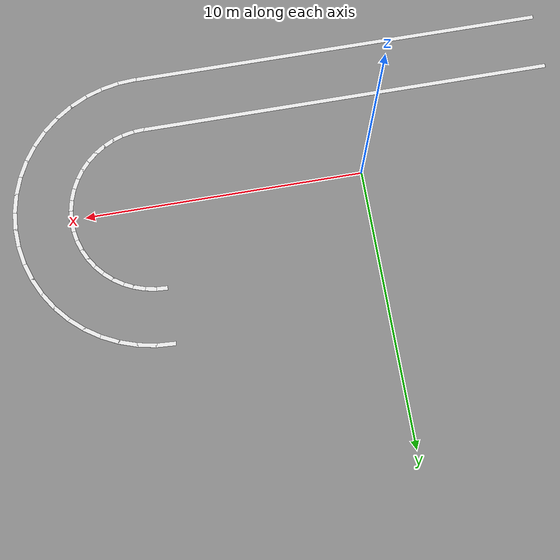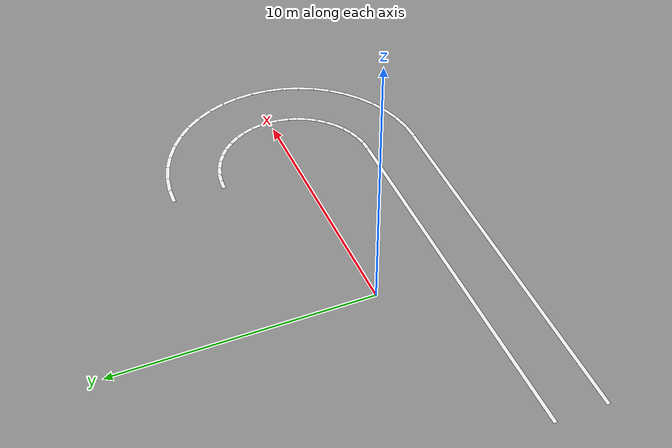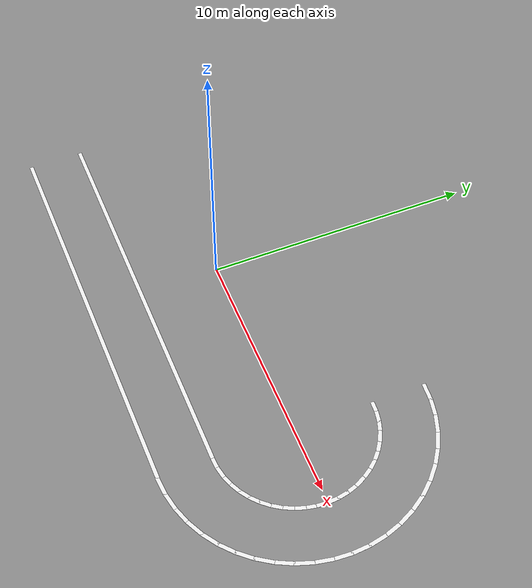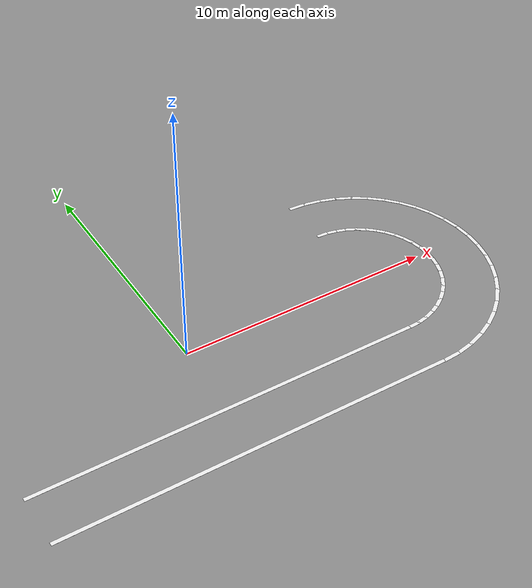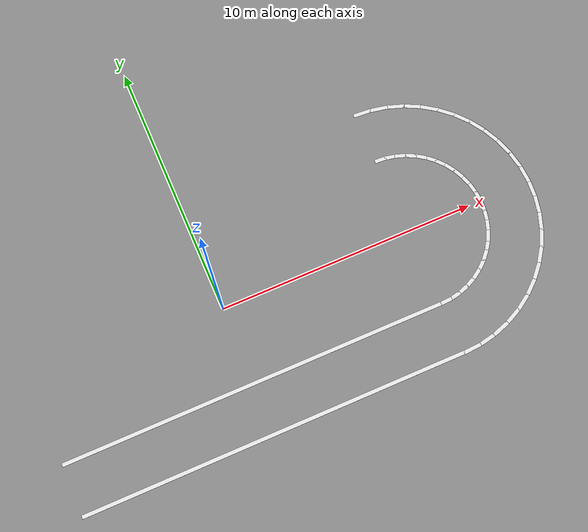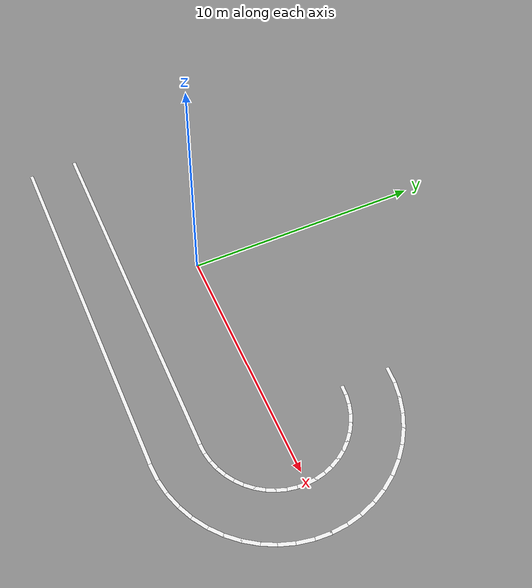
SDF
<sdf version="1.6">
 <world name="stadium_world">
  <model name="straight_bot_inner">
   <static>true</static>
   <pose>0 -3.0 0.001 0 0 0</pose>
   <link name="link">
    <visual name="visual">
     <geometry><box><size>15.0 0.15 0.002</size></box></geometry>
     <material><ambient>1 1 1 1</ambient></material>
    </visual>
   </link>
  </model>
  <model name="straight_bot_outer">
   <static>true</static>
   <pose>0 -5.0 0.001 0 0 0</pose>
   <link name="link">
    <visual name="visual">
     <geometry><box><size>15.0 0.15 0.002</size></box></geometry>
     <material><ambient>1 1 1 1</ambient></material>
    </visual>
   </link>
  </model>
  <model name="arc_right_in_0">
   <static>true</static>
   <pose>7.696209387690429 -2.99357676971581 0.001 0 0 0.06544984694978728</pose>
   <link name="link">
    <visual name="visual">
     <geometry><box><size>0.44326077689142934 0.15 0.002</size></box></geometry>
     <material><ambient>1 1 1 1</ambient></material>
    </visual>
   </link>
  </model>
  <model name="arc_right_out_0">
   <static>true</static>
   <pose>7.827015646150715 -4.989294616193018 0.001 0 0 0.06544984694978728</pose>
   <link name="link">
    <visual name="visual">
     <geometry><box><size>0.7054346281523822 0.15 0.002</size></box></geometry>
     <material><ambient>1 1 1 1</ambient></material>
    </visual>
   </link>
  </model>
  <model name="arc_right_in_1">
   <static>true</static>
   <pose>8.085270966048386 -2.9423558412096913 0.001 0 0 0.19634954084936207</pose>
   <link name="link">
    <visual name="visual">
     <geometry><box><size>0.44326077689142934 0.15 0.002</size></box></geometry>
     <material><ambient>1 1 1 1</ambient></material>
    </visual>
   </link>
  </model>
  <model name="arc_right_out_1">
   <static>true</static>
   <pose>8.475451610080642 -4.903926402016152 0.001 0 0 0.19634954084936207</pose>
   <link name="link">
    <visual name="visual">
     <geometry><box><size>0.7054346281523822 0.15 0.002</size></box></geometry>
     <material><ambient>1 1 1 1</ambient></material>
    </visual>
   </link>
  </model>
  <model name="arc_right_in_2">
   <static>true</static>
   <pose>8.464318395909485 -2.840790388485317 0.001 0 0 0.32724923474893686</pose>
   <link name="link">
    <visual name="visual">
     <geometry><box><size>0.44326077689142934 0.15 0.002</size></box></geometry>
     <material><ambient>1 1 1 1</ambient></material>
    </visual>
   </link>
  </model>
  <model name="arc_right_out_2">
   <static>true</static>
   <pose>9.10719732651581 -4.734650647475528 0.001 0 0 0.32724923474893686</pose>
   <link name="link">
    <visual name="visual">
     <geometry><box><size>0.7054346281523822 0.15 0.002</size></box></geometry>
     <material><ambient>1 1 1 1</ambient></material>
    </visual>
   </link>
  </model>
  <model name="arc_right_in_3">
   <static>true</static>
   <pose>8.826866070657005 -2.690618224598065 0.001 0 0 0.4581489286485114</pose>
   <link name="link">
    <visual name="visual">
     <geometry><box><size>0.44326077689142934 0.15 0.002</size></box></geometry>
     <material><ambient>1 1 1 1</ambient></material>
    </visual>
   </link>
  </model>
  <model name="arc_right_out_3">
   <static>true</static>
   <pose>9.711443451095006 -4.484363707663442 0.001 0 0 0.4581489286485114</pose>
   <link name="link">
    <visual name="visual">
     <geometry><box><size>0.7054346281523822 0.15 0.002</size></box></geometry>
     <material><ambient>1 1 1 1</ambient></material>
    </visual>
   </link>
  </model>
  <model name="arc_right_in_4">
   <static>true</static>
   <pose>9.166710699058807 -2.4944088369076356 0.001 0 0 0.5890486225480862</pose>
   <link name="link">
    <visual name="visual">
     <geometry><box><size>0.44326077689142934 0.15 0.002</size></box></geometry>
     <material><ambient>1 1 1 1</ambient></material>
    </visual>
   </link>
  </model>
  <model name="arc_right_out_4">
   <static>true</static>
   <pose>10.277851165098012 -4.157348061512726 0.001 0 0 0.5890486225480862</pose>
   <link name="link">
    <visual name="visual">
     <geometry><box><size>0.7054346281523822 0.15 0.002</size></box></geometry>
     <material><ambient>1 1 1 1</ambient></material>
    </visual>
   </link>
  </model>
  <model name="arc_right_in_5">
   <static>true</static>
   <pose>9.478037445300206 -2.2555194224369317 0.001 0 0 0.719948316447661</pose>
   <link name="link">
    <visual name="visual">
     <geometry><box><size>0.44326077689142934 0.15 0.002</size></box></geometry>
     <material><ambient>1 1 1 1</ambient></material>
    </visual>
   </link>
  </model>
  <model name="arc_right_out_5">
   <static>true</static>
   <pose>10.796729075500345 -3.7591990373948865 0.001 0 0 0.719948316447661</pose>
   <link name="link">
    <visual name="visual">
     <geometry><box><size>0.7054346281523822 0.15 0.002</size></box></geometry>
     <material><ambient>1 1 1 1</ambient></material>
    </visual>
   </link>
  </model>
  <model name="arc_right_in_6">
   <static>true</static>
   <pose>9.755519422436933 -1.9780374453002065 0.001 0 0 0.8508480103472357</pose>
   <link name="link">
    <visual name="visual">
     <geometry><box><size>0.44326077689142934 0.15 0.002</size></box></geometry>
     <material><ambient>1 1 1 1</ambient></material>
    </visual>
   </link>
  </model>
  <model name="arc_right_out_6">
   <static>true</static>
   <pose>11.259199037394886 -3.296729075500344 0.001 0 0 0.8508480103472357</pose>
   <link name="link">
    <visual name="visual">
     <geometry><box><size>0.7054346281523822 0.15 0.002</size></box></geometry>
     <material><ambient>1 1 1 1</ambient></material>
    </visual>
   </link>
  </model>
  <model name="arc_right_in_7">
   <static>true</static>
   <pose>9.994408836907635 -1.6667106990588065 0.001 0 0 0.9817477042468103</pose>
   <link name="link">
    <visual name="visual">
     <geometry><box><size>0.44326077689142934 0.15 0.002</size></box></geometry>
     <material><ambient>1 1 1 1</ambient></material>
    </visual>
   </link>
  </model>
  <model name="arc_right_out_7">
   <static>true</static>
   <pose>11.657348061512726 -2.777851165098011 0.001 0 0 0.9817477042468103</pose>
   <link name="link">
    <visual name="visual">
     <geometry><box><size>0.7054346281523822 0.15 0.002</size></box></geometry>
     <material><ambient>1 1 1 1</ambient></material>
    </visual>
   </link>
  </model>
  <model name="arc_right_in_8">
   <static>true</static>
   <pose>10.190618224598065 -1.326866070657004 0.001 0 0 1.1126473981463851</pose>
   <link name="link">
    <visual name="visual">
     <geometry><box><size>0.44326077689142934 0.15 0.002</size></box></geometry>
     <material><ambient>1 1 1 1</ambient></material>
    </visual>
   </link>
  </model>
  <model name="arc_right_out_8">
   <static>true</static>
   <pose>11.98436370766344 -2.2114434510950067 0.001 0 0 1.1126473981463851</pose>
   <link name="link">
    <visual name="visual">
     <geometry><box><size>0.7054346281523822 0.15 0.002</size></box></geometry>
     <material><ambient>1 1 1 1</ambient></material>
    </visual>
   </link>
  </model>
  <model name="arc_right_in_9">
   <static>true</static>
   <pose>10.340790388485317 -0.9643183959094845 0.001 0 0 1.2435470920459597</pose>
   <link name="link">
    <visual name="visual">
     <geometry><box><size>0.44326077689142934 0.15 0.002</size></box></geometry>
     <material><ambient>1 1 1 1</ambient></material>
    </visual>
   </link>
  </model>
  <model name="arc_right_out_9">
   <static>true</static>
   <pose>12.23465064747553 -1.6071973265158077 0.001 0 0 1.2435470920459597</pose>
   <link name="link">
    <visual name="visual">
     <geometry><box><size>0.7054346281523822 0.15 0.002</size></box></geometry>
     <material><ambient>1 1 1 1</ambient></material>
    </visual>
   </link>
  </model>
  <model name="arc_right_in_10">
   <static>true</static>
   <pose>10.442355841209691 -0.5852709660483848 0.001 0 0 1.3744467859455345</pose>
   <link name="link">
    <visual name="visual">
     <geometry><box><size>0.44326077689142934 0.15 0.002</size></box></geometry>
     <material><ambient>1 1 1 1</ambient></material>
    </visual>
   </link>
  </model>
  <model name="arc_right_out_10">
   <static>true</static>
   <pose>12.403926402016152 -0.9754516100806412 0.001 0 0 1.3744467859455345</pose>
   <link name="link">
    <visual name="visual">
     <geometry><box><size>0.7054346281523822 0.15 0.002</size></box></geometry>
     <material><ambient>1 1 1 1</ambient></material>
    </visual>
   </link>
  </model>
  <model name="arc_right_in_11">
   <static>true</static>
   <pose>10.49357676971581 -0.1962093876904293 0.001 0 0 1.5053464798451093</pose>
   <link name="link">
    <visual name="visual">
     <geometry><box><size>0.44326077689142934 0.15 0.002</size></box></geometry>
     <material><ambient>1 1 1 1</ambient></material>
    </visual>
   </link>
  </model>
  <model name="arc_right_out_11">
   <static>true</static>
   <pose>12.489294616193018 -0.32701564615071554 0.001 0 0 1.5053464798451093</pose>
   <link name="link">
    <visual name="visual">
     <geometry><box><size>0.7054346281523822 0.15 0.002</size></box></geometry>
     <material><ambient>1 1 1 1</ambient></material>
    </visual>
   </link>
  </model>
  <model name="arc_right_in_12">
   <static>true</static>
   <pose>10.49357676971581 0.19620938769042898 0.001 0 0 1.6362461737446838</pose>
   <link name="link">
    <visual name="visual">
     <geometry><box><size>0.44326077689142934 0.15 0.002</size></box></geometry>
     <material><ambient>1 1 1 1</ambient></material>
    </visual>
   </link>
  </model>
  <model name="arc_right_out_12">
   <static>true</static>
   <pose>12.489294616193018 0.327015646150715 0.001 0 0 1.6362461737446838</pose>
   <link name="link">
    <visual name="visual">
     <geometry><box><size>0.7054346281523822 0.15 0.002</size></box></geometry>
     <material><ambient>1 1 1 1</ambient></material>
    </visual>
   </link>
  </model>
  <model name="arc_right_in_13">
   <static>true</static>
   <pose>10.442355841209691 0.5852709660483848 0.001 0 0 1.7671458676442586</pose>
   <link name="link">
    <visual name="visual">
     <geometry><box><size>0.44326077689142934 0.15 0.002</size></box></geometry>
     <material><ambient>1 1 1 1</ambient></material>
    </visual>
   </link>
  </model>
  <model name="arc_right_out_13">
   <static>true</static>
   <pose>12.403926402016152 0.9754516100806412 0.001 0 0 1.7671458676442586</pose>
   <link name="link">
    <visual name="visual">
     <geometry><box><size>0.7054346281523822 0.15 0.002</size></box></geometry>
     <material><ambient>1 1 1 1</ambient></material>
    </visual>
   </link>
  </model>
  <model name="arc_right_in_14">
   <static>true</static>
   <pose>10.340790388485317 0.964318395909485 0.001 0 0 1.8980455615438334</pose>
   <link name="link">
    <visual name="visual">
     <geometry><box><size>0.44326077689142934 0.15 0.002</size></box></geometry>
     <material><ambient>1 1 1 1</ambient></material>
    </visual>
   </link>
  </model>
  <model name="arc_right_out_14">
   <static>true</static>
   <pose>12.23465064747553 1.6071973265158082 0.001 0 0 1.8980455615438334</pose>
   <link name="link">
    <visual name="visual">
     <geometry><box><size>0.7054346281523822 0.15 0.002</size></box></geometry>
     <material><ambient>1 1 1 1</ambient></material>
    </visual>
   </link>
  </model>
  <model name="arc_right_in_15">
   <static>true</static>
   <pose>10.190618224598065 1.3268660706570037 0.001 0 0 2.028945255443408</pose>
   <link name="link">
    <visual name="visual">
     <geometry><box><size>0.44326077689142934 0.15 0.002</size></box></geometry>
     <material><ambient>1 1 1 1</ambient></material>
    </visual>
   </link>
  </model>
  <model name="arc_right_out_15">
   <static>true</static>
   <pose>11.98436370766344 2.211443451095006 0.001 0 0 2.028945255443408</pose>
   <link name="link">
    <visual name="visual">
     <geometry><box><size>0.7054346281523822 0.15 0.002</size></box></geometry>
     <material><ambient>1 1 1 1</ambient></material>
    </visual>
   </link>
  </model>
  <model name="arc_right_in_16">
   <static>true</static>
   <pose>9.994408836907635 1.6667106990588065 0.001 0 0 2.1598449493429825</pose>
   <link name="link">
    <visual name="visual">
     <geometry><box><size>0.44326077689142934 0.15 0.002</size></box></geometry>
     <material><ambient>1 1 1 1</ambient></material>
    </visual>
   </link>
  </model>
  <model name="arc_right_out_16">
   <static>true</static>
   <pose>11.657348061512726 2.777851165098011 0.001 0 0 2.1598449493429825</pose>
   <link name="link">
    <visual name="visual">
     <geometry><box><size>0.7054346281523822 0.15 0.002</size></box></geometry>
     <material><ambient>1 1 1 1</ambient></material>
    </visual>
   </link>
  </model>
  <model name="arc_right_in_17">
   <static>true</static>
   <pose>9.755519422436933 1.978037445300207 0.001 0 0 2.2907446432425576</pose>
   <link name="link">
    <visual name="visual">
     <geometry><box><size>0.44326077689142934 0.15 0.002</size></box></geometry>
     <material><ambient>1 1 1 1</ambient></material>
    </visual>
   </link>
  </model>
  <model name="arc_right_out_17">
   <static>true</static>
   <pose>11.259199037394886 3.2967290755003447 0.001 0 0 2.2907446432425576</pose>
   <link name="link">
    <visual name="visual">
     <geometry><box><size>0.7054346281523822 0.15 0.002</size></box></geometry>
     <material><ambient>1 1 1 1</ambient></material>
    </visual>
   </link>
  </model>
  <model name="arc_right_in_18">
   <static>true</static>
   <pose>9.478037445300206 2.2555194224369317 0.001 0 0 2.421644337142132</pose>
   <link name="link">
    <visual name="visual">
     <geometry><box><size>0.44326077689142934 0.15 0.002</size></box></geometry>
     <material><ambient>1 1 1 1</ambient></material>
    </visual>
   </link>
  </model>
  <model name="arc_right_out_18">
   <static>true</static>
   <pose>10.796729075500345 3.7591990373948865 0.001 0 0 2.421644337142132</pose>
   <link name="link">
    <visual name="visual">
     <geometry><box><size>0.7054346281523822 0.15 0.002</size></box></geometry>
     <material><ambient>1 1 1 1</ambient></material>
    </visual>
   </link>
  </model>
  <model name="arc_right_in_19">
   <static>true</static>
   <pose>9.166710699058807 2.4944088369076356 0.001 0 0 2.552544031041707</pose>
   <link name="link">
    <visual name="visual">
     <geometry><box><size>0.44326077689142934 0.15 0.002</size></box></geometry>
     <material><ambient>1 1 1 1</ambient></material>
    </visual>
   </link>
  </model>
  <model name="arc_right_out_19">
   <static>true</static>
   <pose>10.277851165098012 4.157348061512726 0.001 0 0 2.552544031041707</pose>
   <link name="link">
    <visual name="visual">
     <geometry><box><size>0.7054346281523822 0.15 0.002</size></box></geometry>
     <material><ambient>1 1 1 1</ambient></material>
    </visual>
   </link>
  </model>
  <model name="arc_right_in_20">
   <static>true</static>
   <pose>8.826866070657005 2.690618224598065 0.001 0 0 2.6834437249412817</pose>
   <link name="link">
    <visual name="visual">
     <geometry><box><size>0.44326077689142934 0.15 0.002</size></box></geometry>
     <material><ambient>1 1 1 1</ambient></material>
    </visual>
   </link>
  </model>
  <model name="arc_right_out_20">
   <static>true</static>
   <pose>9.711443451095006 4.484363707663442 0.001 0 0 2.6834437249412817</pose>
   <link name="link">
    <visual name="visual">
     <geometry><box><size>0.7054346281523822 0.15 0.002</size></box></geometry>
     <material><ambient>1 1 1 1</ambient></material>
    </visual>
   </link>
  </model>
  <model name="arc_right_in_21">
   <static>true</static>
   <pose>8.464318395909485 2.840790388485317 0.001 0 0 2.8143434188408563</pose>
   <link name="link">
    <visual name="visual">
     <geometry><box><size>0.44326077689142934 0.15 0.002</size></box></geometry>
     <material><ambient>1 1 1 1</ambient></material>
    </visual>
   </link>
  </model>
  <model name="arc_right_out_21">
   <static>true</static>
   <pose>9.10719732651581 4.734650647475528 0.001 0 0 2.8143434188408563</pose>
   <link name="link">
    <visual name="visual">
     <geometry><box><size>0.7054346281523822 0.15 0.002</size></box></geometry>
     <material><ambient>1 1 1 1</ambient></material>
    </visual>
   </link>
  </model>
  <model name="arc_right_in_22">
   <static>true</static>
   <pose>8.085270966048386 2.9423558412096913 0.001 0 0 2.945243112740431</pose>
   <link name="link">
    <visual name="visual">
     <geometry><box><size>0.44326077689142934 0.15 0.002</size></box></geometry>
     <material><ambient>1 1 1 1</ambient></material>
    </visual>
   </link>
  </model>
  <model name="arc_right_out_22">
   <static>true</static>
   <pose>8.475451610080642 4.903926402016152 0.001 0 0 2.945243112740431</pose>
   <link name="link">
    <visual name="visual">
     <geometry><box><size>0.7054346281523822 0.15 0.002</size></box></geometry>
     <material><ambient>1 1 1 1</ambient></material>
    </visual>
   </link>
  </model>
  <model name="arc_right_in_23">
   <static>true</static>
   <pose>7.696209387690429 2.99357676971581 0.001 0 0 3.076142806640006</pose>
   <link name="link">
    <visual name="visual">
     <geometry><box><size>0.44326077689142934 0.15 0.002</size></box></geometry>
     <material><ambient>1 1 1 1</ambient></material>
    </visual>
   </link>
  </model>
  <model name="arc_right_out_23">
   <static>true</static>
   <pose>7.827015646150715 4.989294616193018 0.001 0 0 3.076142806640006</pose>
   <link name="link">
    <visual name="visual">
     <geometry><box><size>0.7054346281523822 0.15 0.002</size></box></geometry>
     <material><ambient>1 1 1 1</ambient></material>
    </visual>
   </link>
  </model>
 </world>
</sdf>
